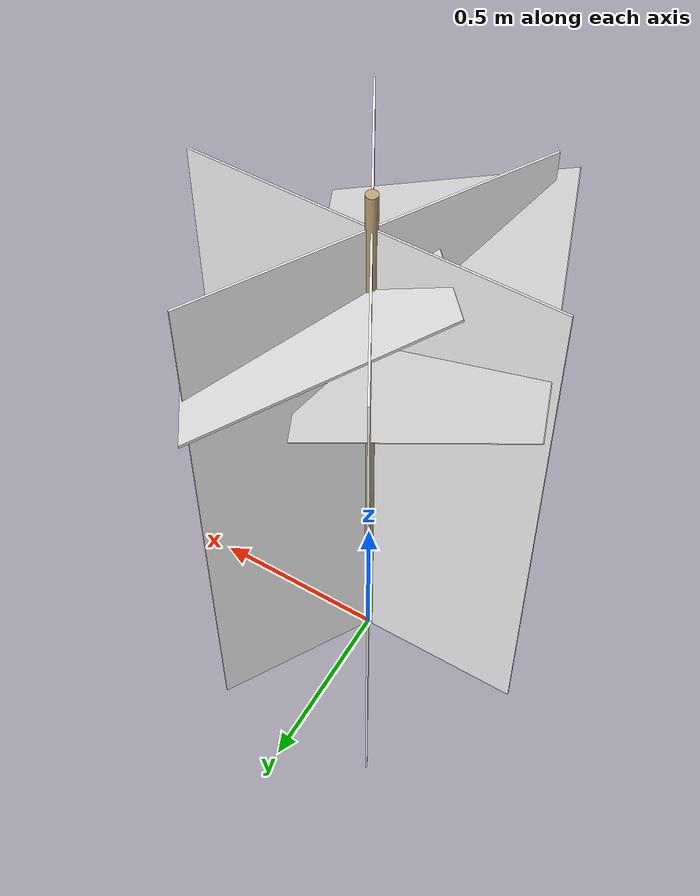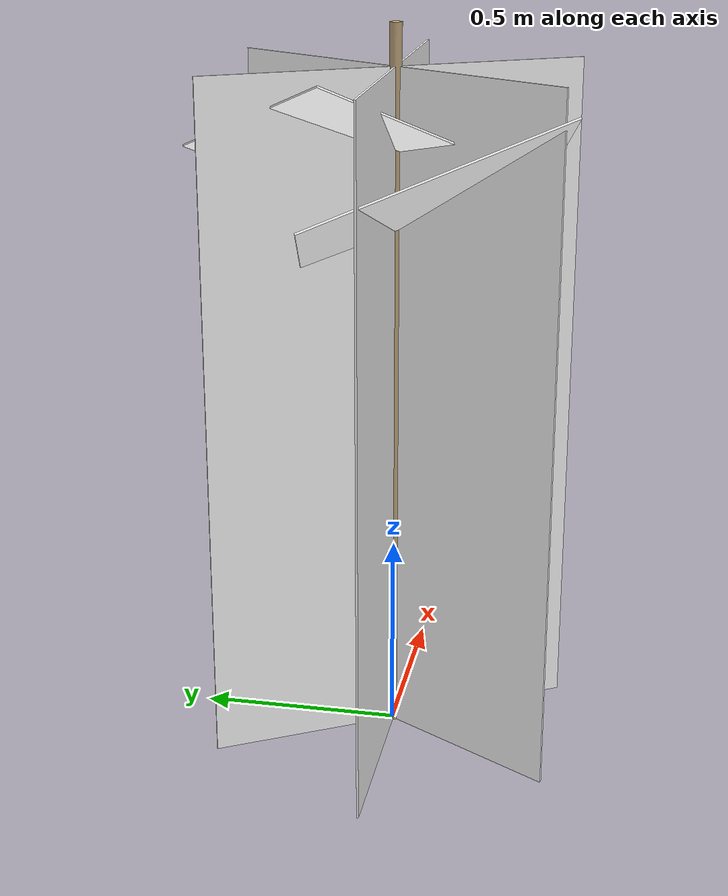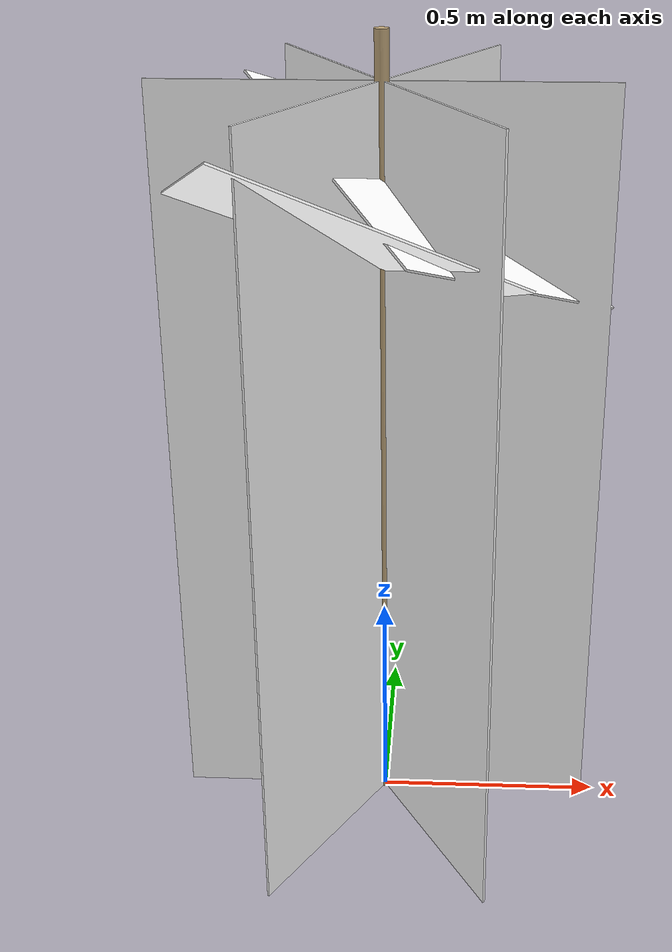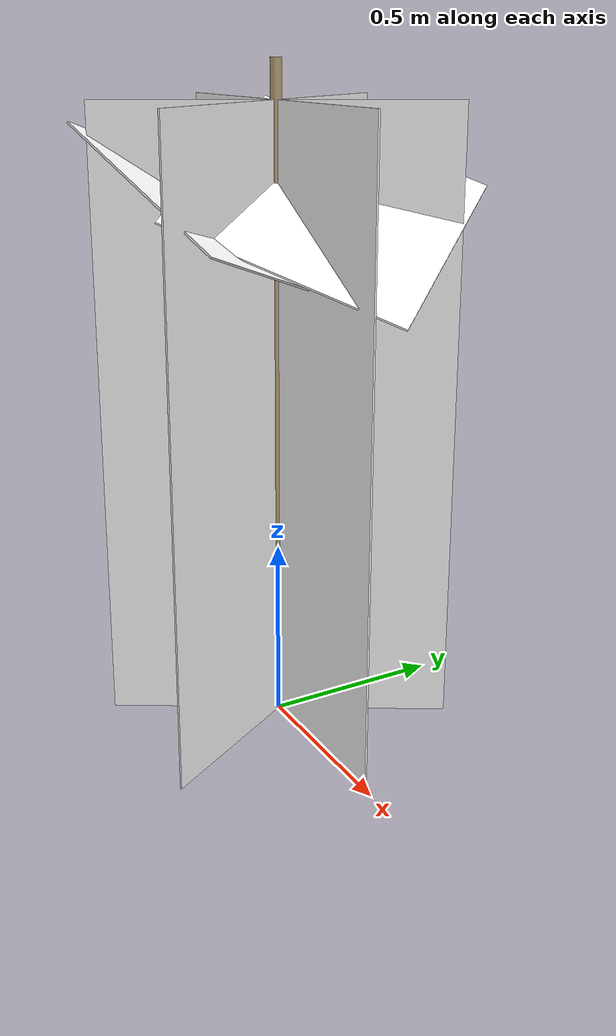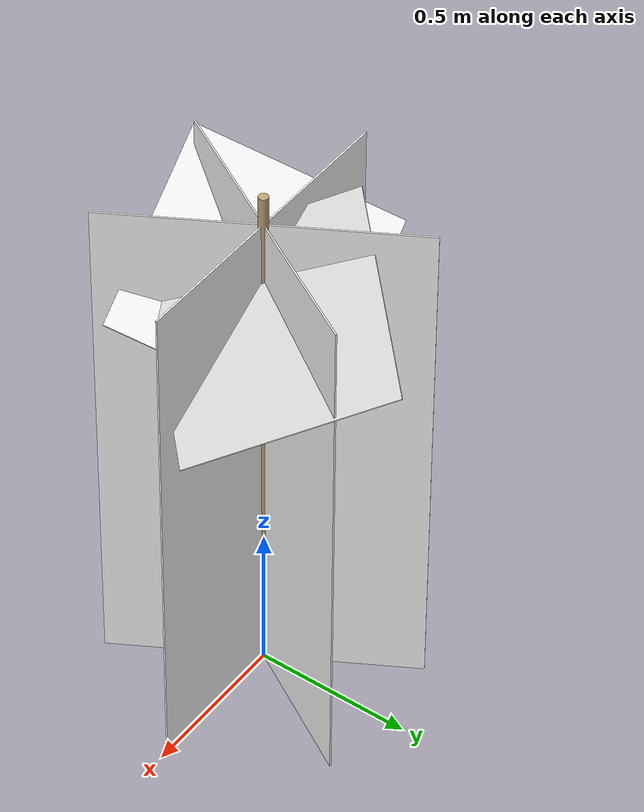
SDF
<?xml version="1.0" ?>
<sdf version="1.9">
  <model name="tomato_plant">
    <static>true</static>

    <link name="plant_link">
      <pose>0 0 0 0 0 0</pose>

      <!-- Central Support Bamboo Stake -->
      <visual name="bamboo_stake">
        <pose>0 0 0.9 0 0 0</pose>
        <geometry><cylinder><radius>0.015</radius><length>1.8</length></cylinder></geometry>
        <material>
          <ambient>0.65 0.55 0.4 1</ambient>
          <diffuse>0.75 0.65 0.48 1</diffuse>
        </material>
      </visual>

      <!-- PHOTOREALISTIC TEXTURED CROSS-BILLBOARDS (3-Way Star)-->
      <!-- Plane 1: 0 degrees -->
      <visual name="foliage_plane_0deg">
        <pose>0 0 0.85 0 0 0</pose>
        <geometry>
          <box><size>0.95 0.005 1.7</size></box>
        </geometry>
        <material>
          <ambient>1.0 1.0 1.0 1.0</ambient>
          <diffuse>1.0 1.0 1.0 1.0</diffuse>
          <pbr>
            <metal>
              <albedo_map>model://tomato_plant/materials/textures/tomato_real.png</albedo_map>
              <roughness>0.6</roughness>
              <metalness>0.0</metalness>
            </metal>
          </pbr>
        </material>
      </visual>

      <!-- Plane 2: 60 degrees -->
      <visual name="foliage_plane_60deg">
        <pose>0 0 0.85 0 0 1.047</pose>
        <geometry>
          <box><size>0.95 0.005 1.7</size></box>
        </geometry>
        <material>
          <ambient>1.0 1.0 1.0 1.0</ambient>
          <diffuse>1.0 1.0 1.0 1.0</diffuse>
          <pbr>
            <metal>
              <albedo_map>model://tomato_plant/materials/textures/tomato_real.png</albedo_map>
              <roughness>0.6</roughness>
              <metalness>0.0</metalness>
            </metal>
          </pbr>
        </material>
      </visual>

      <!-- Plane 3: 120 degrees -->
      <visual name="foliage_plane_120deg">
        <pose>0 0 0.85 0 0 2.094</pose>
        <geometry>
          <box><size>0.95 0.005 1.7</size></box>
        </geometry>
        <material>
          <ambient>1.0 1.0 1.0 1.0</ambient>
          <diffuse>1.0 1.0 1.0 1.0</diffuse>
          <pbr>
            <metal>
              <albedo_map>model://tomato_plant/materials/textures/tomato_real.png</albedo_map>
              <roughness>0.6</roughness>
              <metalness>0.0</metalness>
            </metal>
          </pbr>
        </material>
      </visual>

      <!-- Top-Down Angled Canopy Quads (Optimized for Drone Aerial Camera) -->
      <visual name="aerial_canopy_quad_1">
        <pose>0.1 0.1 1.45 0.45 0.35 0.8</pose>
        <geometry><box><size>0.65 0.65 0.005</size></box></geometry>
        <material>
          <ambient>1.0 1.0 1.0 1.0</ambient>
          <diffuse>1.0 1.0 1.0 1.0</diffuse>
          <pbr>
            <metal>
              <albedo_map>model://tomato_plant/materials/textures/tomato_real.png</albedo_map>
              <roughness>0.6</roughness>
              <metalness>0.0</metalness>
            </metal>
          </pbr>
        </material>
      </visual>
      <visual name="aerial_canopy_quad_2">
        <pose>-0.1 -0.1 1.4 -0.45 -0.35 -1.2</pose>
        <geometry><box><size>0.65 0.65 0.005</size></box></geometry>
        <material>
          <ambient>1.0 1.0 1.0 1.0</ambient>
          <diffuse>1.0 1.0 1.0 1.0</diffuse>
          <pbr>
            <metal>
              <albedo_map>model://tomato_plant/materials/textures/tomato_real.png</albedo_map>
              <roughness>0.6</roughness>
              <metalness>0.0</metalness>
            </metal>
          </pbr>
        </material>
      </visual>

      <!-- Collision Volume -->
      <collision name="plant_collision">
        <pose>0 0 0.85 0 0 0</pose>
        <geometry><cylinder><radius>0.35</radius><length>1.7</length></cylinder></geometry>
      </collision>
    </link>
  </model>
</sdf>
